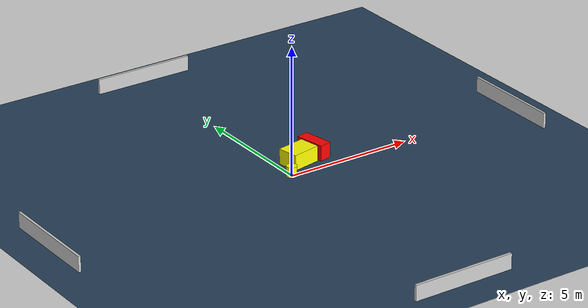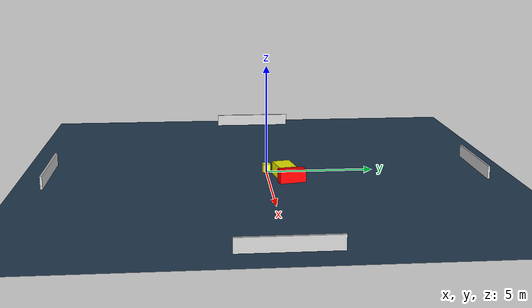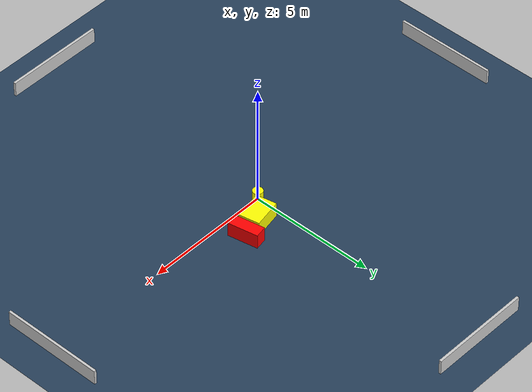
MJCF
<?xml version="1.0" ?>
<mujoco model="generated_environment">
  <option timestep="0.01" integrator="RK4" cone="elliptic"/>
  <default>
    <geom density="1"/>
  </default>
  <asset>
    <texture builtin="gradient" height="3072" name="skybox" rgb1="0.3 0.5 0.7" rgb2="0 0 0" type="skybox" width="512"/>
    <texture builtin="checker" height="300" name="groundplane" rgb1="0.2 0.3 0.4" rgb2="0.1 0.2 0.3" type="2d" width="300"/>
    <material name="groundplane" reflectance="0.2" texrepeat="5 5" texture="groundplane"/>
  </asset>
  <worldbody>
    <light dir="0 0 -1" directional="true" pos="0 0 1.5"/>
    <geom condim="3" friction="0.5 0.005 0.001" material="groundplane" name="floor" pos="0 0 0" size="0 0 0.05" type="plane"/>
    <body name="walls">
      <geom name="wall_1" condim="4" pos="-10.0 0.0 0.3" rgba="0.800000011920929 0.800000011920929 0.800000011920929 1.0" size="0.05 2.0 0.3" type="box"/>
      <geom name="wall_2" condim="4" pos="10.0 0.0 0.3" rgba="0.800000011920929 0.800000011920929 0.800000011920929 1.0" size="0.05 2.0 0.3" type="box"/>
      <geom name="wall_3" condim="4" pos="0.0 -10.0 0.3" rgba="0.800000011920929 0.800000011920929 0.800000011920929 1.0" size="2.0 0.05 0.3" type="box"/>
      <geom name="wall_4" condim="4" pos="0.0 10.0 0.3" rgba="0.800000011920929 0.800000011920929 0.800000011920929 1.0" size="2.0 0.05 0.3" type="box"/>
    </body>
    <body name="robot">
      <joint name="joint_x" type="slide" pos="0 0 0" axis="1 0 0"/>
      <joint name="joint_y" type="slide" pos="0 0 0" axis="0 1 0"/>
      <geom name="robot" type="cylinder" pos="0.0 0.0 0.2" size="0.2 0.2 0.0" mass="5.0" friction="1.0 0.005 0.0001" condim="4" rgba="1.0 1.0 0.0 1.0"/>
    </body>
    <body name="obstacle_1_movable">
      <geom name="obstacle_1_movable" condim="4" pos="0.8277678856495758 0.7626250589495598 0.3" euler="0 0 101.10787174485368" friction="0.0 0.005 0.001" rgba="1.0 1.0 0.0 1.0" size="0.40632627320780756 0.5753633834736129 0.3" type="box" mass="0.1"/>
      <joint type="free"/>
    </body>
    <body name="obstacle_2_static">
      <geom name="obstacle_2_static" condim="4" pos="1.6795221870571344 1.0126523012708661 0.3" euler="0 0 280.79603812339434" friction="0.0 0.005 0.001" rgba="1.0 0.0 0.0 1.0" size="0.5973526607519046 0.235079237704527 0.3" type="box"/>
    </body>
  </worldbody>
  <actuator>
    <motor name="actuator_x" joint="joint_x" gear="1" ctrlrange="-1 1"/>
    <motor name="actuator_y" joint="joint_y" gear="1" ctrlrange="-1 1"/>
  </actuator>
</mujoco>
